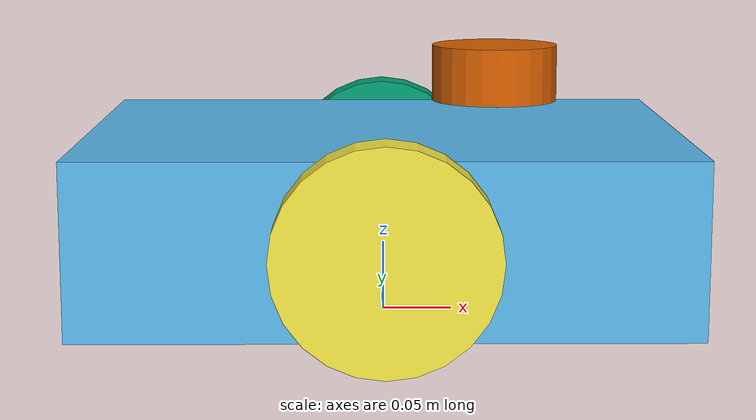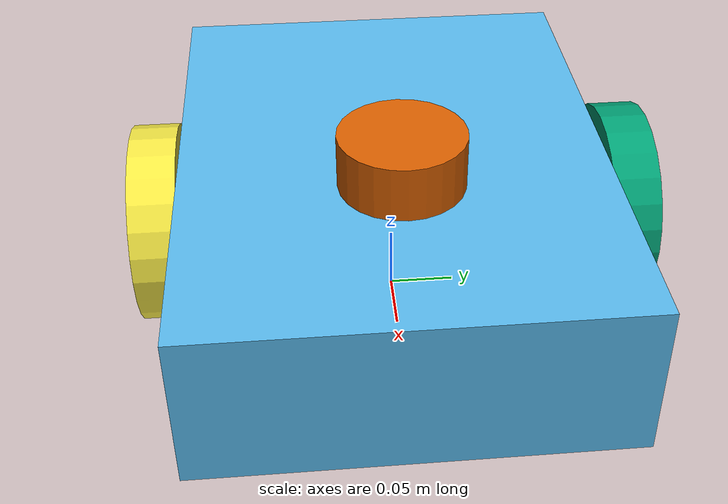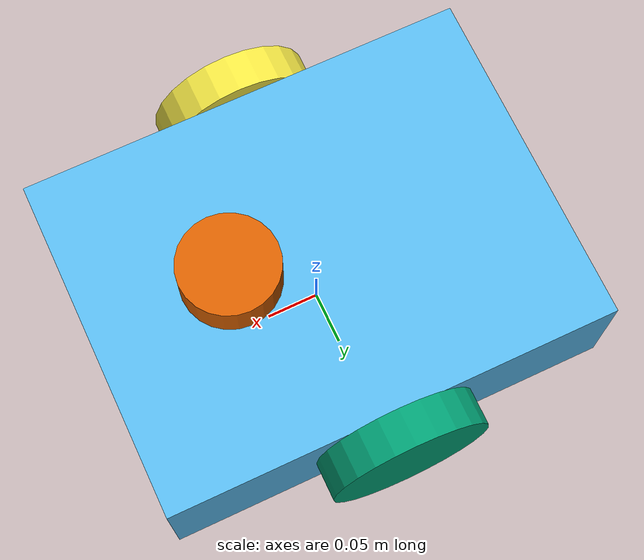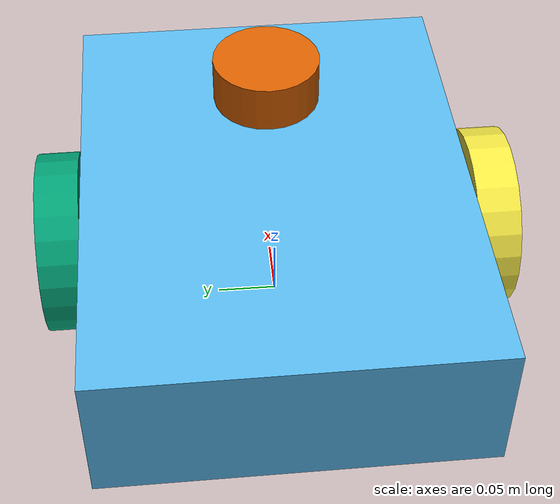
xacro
<?xml version="1.0"?>
<robot xmlns:xacro="http://www.ros.org/wiki/xacro" name="sunny_mobile_robot">
  <xacro:property name="base_length" value="0.42"/>
  <xacro:property name="base_width" value="0.32"/>
  <xacro:property name="base_height" value="0.12"/>
  <xacro:property name="wheel_radius" value="0.075"/>
  <xacro:property name="wheel_width" value="0.035"/>
  <xacro:property name="wheel_y" value="0.1775"/>

  <link name="base_footprint"/>
  <joint name="base_footprint_joint" type="fixed">
    <parent link="base_footprint"/><child link="base_link"/>
    <origin xyz="0 0 0.075" rpy="0 0 0"/>
  </joint>

  <link name="base_link">
    <visual><geometry><box size="${base_length} ${base_width} ${base_height}"/></geometry></visual>
    <collision><geometry><box size="${base_length} ${base_width} ${base_height}"/></geometry></collision>
    <inertial><mass value="8.0"/><inertia ixx="0.08" ixy="0" ixz="0" iyy="0.14" iyz="0" izz="0.18"/></inertial>
  </link>

  <xacro:macro name="drive_wheel" params="name y">
    <link name="${name}_wheel_link">
      <visual><origin rpy="1.5708 0 0"/><geometry><cylinder radius="${wheel_radius}" length="${wheel_width}"/></geometry></visual>
      <collision><origin rpy="1.5708 0 0"/><geometry><cylinder radius="${wheel_radius}" length="${wheel_width}"/></geometry></collision>
      <inertial><mass value="0.35"/><inertia ixx="0.001" ixy="0" ixz="0" iyy="0.001" iyz="0" izz="0.001"/></inertial>
    </link>
    <joint name="${name}_wheel_joint" type="continuous">
      <parent link="base_link"/><child link="${name}_wheel_link"/>
      <origin xyz="0 ${y} 0" rpy="0 0 0"/><axis xyz="0 1 0"/>
    </joint>
  </xacro:macro>
  <xacro:drive_wheel name="left" y="${wheel_y}"/>
  <xacro:drive_wheel name="right" y="-${wheel_y}"/>

  <link name="caster_link">
    <visual><geometry><sphere radius="0.035"/></geometry></visual>
    <collision><geometry><sphere radius="0.035"/></geometry></collision>
    <inertial><mass value="0.1"/><inertia ixx="0.0001" ixy="0" ixz="0" iyy="0.0001" iyz="0" izz="0.0001"/></inertial>
  </link>
  <joint name="caster_joint" type="fixed">
    <parent link="base_link"/><child link="caster_link"/><origin xyz="-0.15 0 -0.04"/>
  </joint>

  <link name="lidar_link">
    <visual><geometry><cylinder radius="0.045" length="0.04"/></geometry></visual>
    <collision><geometry><cylinder radius="0.045" length="0.04"/></geometry></collision>
    <inertial><mass value="0.15"/><inertia ixx="0.0002" ixy="0" ixz="0" iyy="0.0002" iyz="0" izz="0.0002"/></inertial>
  </link>
  <joint name="lidar_joint" type="fixed">
    <parent link="base_link"/><child link="lidar_link"/><origin xyz="0.08 0 0.10"/>
  </joint>

  <gazebo reference="lidar_link">
    <sensor name="lidar" type="gpu_lidar">
      <topic>scan</topic><update_rate>10</update_rate>
      <lidar><scan><horizontal><samples>360</samples><resolution>1</resolution><min_angle>-3.14159</min_angle><max_angle>3.14159</max_angle></horizontal></scan>
      <range><min>0.12</min><max>12.0</max><resolution>0.01</resolution></range></lidar>
      <always_on>true</always_on><visualize>true</visualize>
    </sensor>
  </gazebo>

  <gazebo>
    <plugin filename="gz-sim-diff-drive-system" name="gz::sim::systems::DiffDrive">
      <left_joint>left_wheel_joint</left_joint><right_joint>right_wheel_joint</right_joint>
      <wheel_separation>0.355</wheel_separation><wheel_radius>0.075</wheel_radius>
      <topic>cmd_vel_safe</topic><odom_topic>odom</odom_topic><frame_id>odom</frame_id><child_frame_id>base_footprint</child_frame_id>
    </plugin>
    <plugin filename="gz-sim-joint-state-publisher-system" name="gz::sim::systems::JointStatePublisher">
      <topic>joint_states</topic>
    </plugin>
  </gazebo>
</robot>
